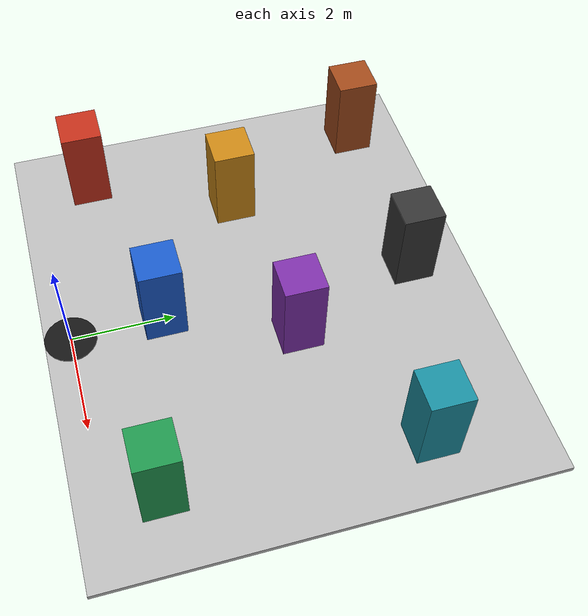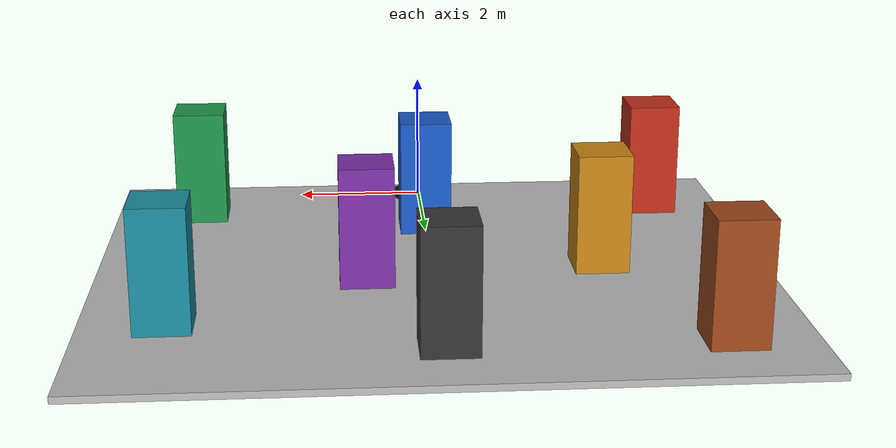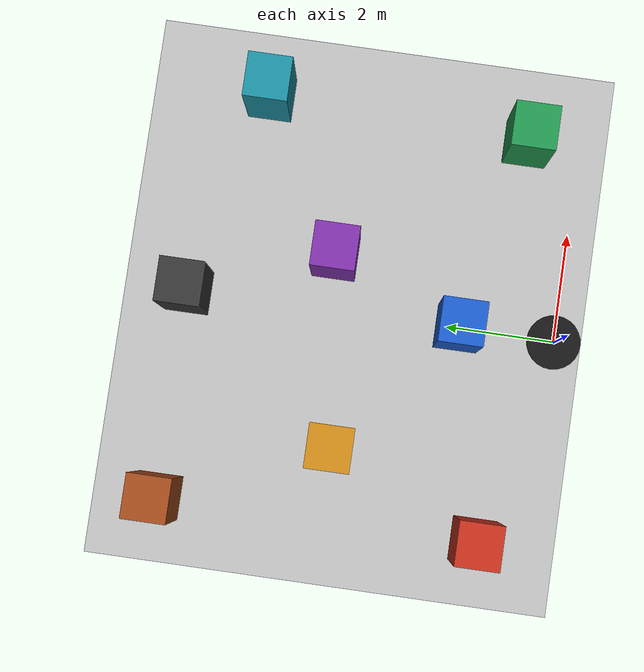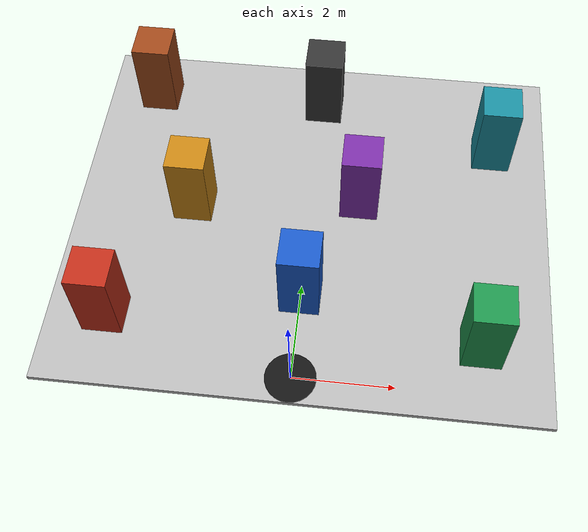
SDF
<?xml version="1.0" encoding="UTF-8"?>
<!--
  Coordinate convention: Gazebo ENU world frame, metres.
  Field bounds: x=[-5.0,5.0], y=[-0.5,8.0].
  The vehicle is spawned by PX4 as gz_x500_mono_cam_down.
-->
<sdf version="1.9">
  <world name="yzq_rectangular_obstacle_field">
    <plugin filename="gz-sim-physics-system" name="gz::sim::systems::Physics"/>
    <plugin filename="gz-sim-user-commands-system" name="gz::sim::systems::UserCommands"/>
    <plugin filename="gz-sim-scene-broadcaster-system" name="gz::sim::systems::SceneBroadcaster"/>
    <plugin filename="gz-sim-sensors-system" name="gz::sim::systems::Sensors">
      <render_engine>ogre2</render_engine>
    </plugin>
    <plugin filename="gz-sim-imu-system" name="gz::sim::systems::Imu"/>
    <plugin filename="gz-sim-air-pressure-system" name="gz::sim::systems::AirPressure"/>
    <plugin filename="gz-sim-magnetometer-system" name="gz::sim::systems::Magnetometer"/>
    <plugin filename="gz-sim-navsat-system" name="gz::sim::systems::NavSat"/>

    <physics type="ode">
      <max_step_size>0.004</max_step_size>
      <real_time_factor>1.0</real_time_factor>
      <real_time_update_rate>250</real_time_update_rate>
    </physics>
    <gravity>0 0 -9.8</gravity>
    <scene>
      <ambient>0.45 0.45 0.45 1</ambient>
      <background>0.70 0.70 0.70 1</background>
      <shadows>true</shadows>
    </scene>

    <!-- Exact 10.0 m x 8.5 m field. Top surface is z=0. -->
    <model name="rectangular_field">
      <static>true</static>
      <pose>0 3.75 -0.05 0 0 0</pose>
      <link name="link">
        <collision name="collision">
          <geometry><box><size>10.0 8.5 0.1</size></box></geometry>
        </collision>
        <visual name="visual">
          <geometry><box><size>10.0 8.5 0.1</size></box></geometry>
          <material>
            <ambient>0.72 0.72 0.72 1</ambient>
            <diffuse>0.72 0.72 0.72 1</diffuse>
          </material>
        </visual>
      </link>
    </model>

    <!-- Circular marker: centre O=(0,0), radius=0.5 m, tangent at (0,-0.5). -->
    <model name="origin_marker">
      <static>true</static>
      <pose>0 0 0.011 0 0 0</pose>
      <link name="link">
        <visual name="ring">
          <geometry><cylinder><radius>0.5</radius><length>0.02</length></cylinder></geometry>
          <material>
            <ambient>0.08 0.08 0.08 1</ambient>
            <diffuse>0.08 0.08 0.08 1</diffuse>
          </material>
        </visual>
      </link>
    </model>

    <!-- Eight static 0.8 m x 0.8 m x 1.8 m obstacles. -->
    <model name="obstacle_01"><static>true</static><pose>-3.8 1.0 0.9 0 0 0</pose><link name="link"><collision name="collision"><geometry><box><size>0.8 0.8 1.8</size></box></geometry></collision><visual name="visual"><geometry><box><size>0.8 0.8 1.8</size></box></geometry><material><ambient>0.75 0.18 0.10 1</ambient><diffuse>0.75 0.18 0.10 1</diffuse></material></visual></link></model>
    <model name="obstacle_02"><static>true</static><pose>0.0 1.8 0.9 0 0 0</pose><link name="link"><collision name="collision"><geometry><box><size>0.8 0.8 1.8</size></box></geometry></collision><visual name="visual"><geometry><box><size>0.8 0.8 1.8</size></box></geometry><material><ambient>0.10 0.35 0.78 1</ambient><diffuse>0.10 0.35 0.78 1</diffuse></material></visual></link></model>
    <model name="obstacle_03"><static>true</static><pose>3.6 1.0 0.9 0 0 0</pose><link name="link"><collision name="collision"><geometry><box><size>0.8 0.8 1.8</size></box></geometry></collision><visual name="visual"><geometry><box><size>0.8 0.8 1.8</size></box></geometry><material><ambient>0.12 0.58 0.30 1</ambient><diffuse>0.12 0.58 0.30 1</diffuse></material></visual></link></model>
    <model name="obstacle_04"><static>true</static><pose>-2.5 3.8 0.9 0 0 0</pose><link name="link"><collision name="collision"><geometry><box><size>0.8 0.8 1.8</size></box></geometry></collision><visual name="visual"><geometry><box><size>0.8 0.8 1.8</size></box></geometry><material><ambient>0.78 0.52 0.08 1</ambient><diffuse>0.78 0.52 0.08 1</diffuse></material></visual></link></model>
    <model name="obstacle_05"><static>true</static><pose>1.0 4.2 0.9 0 0 0</pose><link name="link"><collision name="collision"><geometry><box><size>0.8 0.8 1.8</size></box></geometry></collision><visual name="visual"><geometry><box><size>0.8 0.8 1.8</size></box></geometry><material><ambient>0.48 0.18 0.65 1</ambient><diffuse>0.48 0.18 0.65 1</diffuse></material></visual></link></model>
    <model name="obstacle_06"><static>true</static><pose>3.8 5.8 0.9 0 0 0</pose><link name="link"><collision name="collision"><geometry><box><size>0.8 0.8 1.8</size></box></geometry></collision><visual name="visual"><geometry><box><size>0.8 0.8 1.8</size></box></geometry><material><ambient>0.10 0.55 0.62 1</ambient><diffuse>0.10 0.55 0.62 1</diffuse></material></visual></link></model>
    <model name="obstacle_07"><static>true</static><pose>-3.8 6.8 0.9 0 0 0</pose><link name="link"><collision name="collision"><geometry><box><size>0.8 0.8 1.8</size></box></geometry></collision><visual name="visual"><geometry><box><size>0.8 0.8 1.8</size></box></geometry><material><ambient>0.62 0.28 0.10 1</ambient><diffuse>0.62 0.28 0.10 1</diffuse></material></visual></link></model>
    <model name="obstacle_08"><static>true</static><pose>0.0 6.8 0.9 0 0 0</pose><link name="link"><collision name="collision"><geometry><box><size>0.8 0.8 1.8</size></box></geometry></collision><visual name="visual"><geometry><box><size>0.8 0.8 1.8</size></box></geometry><material><ambient>0.20 0.20 0.20 1</ambient><diffuse>0.20 0.20 0.20 1</diffuse></material></visual></link></model>

    <light name="sun" type="directional"><pose>0 0 500 0 0 0</pose><cast_shadows>true</cast_shadows><intensity>1</intensity><direction>0.2 0.5 -0.8</direction></light>
    <spherical_coordinates><surface_model>EARTH_WGS84</surface_model><world_frame_orientation>ENU</world_frame_orientation><latitude_deg>47.397971057728974</latitude_deg><longitude_deg>8.546163739800146</longitude_deg><elevation>0</elevation></spherical_coordinates>
  </world>
</sdf>
